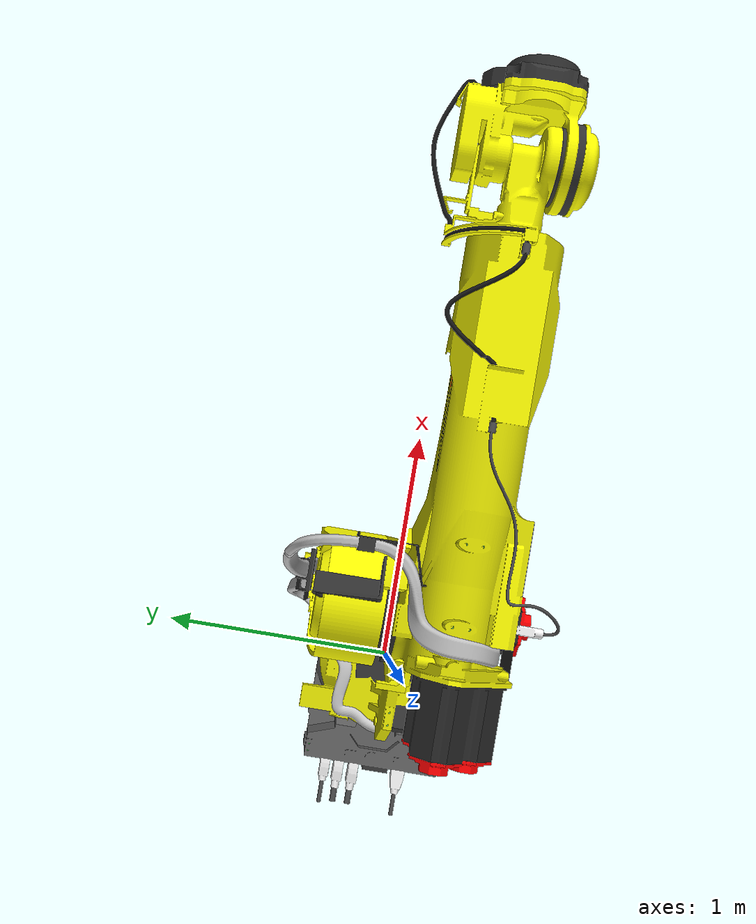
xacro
<?xml version="1.0" ?>
<robot name="m810_270_27b" xmlns:xacro="http://wiki.ros.org/xacro">
  <xacro:include
    filename="$(find fanuc_m810_description)/urdf/m810_270_27b_urdf_macro.xacro"
  />

  <link name="world" />
  <link name="ee_link" />
  <xacro:m810_270_27b parent="world" child="ee_link">
    <origin xyz="0 0 0" rpy="0 0 0" />
  </xacro:m810_270_27b>
</robot>

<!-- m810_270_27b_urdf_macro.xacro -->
<!--
SPDX-FileCopyrightText: 2026, FANUC America Corporation
SPDX-FileCopyrightText: 2026, FANUC CORPORATION
SPDX-License-Identifier: Apache-2.0
-->
<!-- URDF for M-810/270-27B -->
<robot xmlns:xacro="http://wiki.ros.org/xacro">
  <xacro:macro
    name="m810_270_27b"
    params="prefix=''
            parent
            *origin
            child"
  >

    <xacro:property name="j1_lower_limit" value="${radians(-165)}" />
    <xacro:property name="j2_lower_limit" value="${radians(-75)}" />
    <xacro:property name="j3_lower_limit" value="${radians(-79)}" />
    <xacro:property name="j4_lower_limit" value="${radians(-153)}" />
    <xacro:property name="j5_lower_limit" value="${radians(-120)}" />
    <xacro:property name="j6_lower_limit" value="${radians(-360)}" />

    <xacro:property name="j1_upper_limit" value="${radians(165)}" />
    <xacro:property name="j2_upper_limit" value="${radians(96)}" />
    <xacro:property name="j3_upper_limit" value="${radians(90)}" />
    <xacro:property name="j4_upper_limit" value="${radians(153)}" />
    <xacro:property name="j5_upper_limit" value="${radians(120)}" />
    <xacro:property name="j6_upper_limit" value="${radians(360)}" />

    <xacro:property name="j1_effort_limit" value="30000" />
    <xacro:property name="j2_effort_limit" value="30000" />
    <xacro:property name="j3_effort_limit" value="30000" />
    <xacro:property name="j4_effort_limit" value="6000" />
    <xacro:property name="j5_effort_limit" value="6000" />
    <xacro:property name="j6_effort_limit" value="3000" />

    <xacro:property name="j1_velocity_limit" value="${radians(100)}" />
    <xacro:property name="j2_velocity_limit" value="${radians(80)}" />
    <xacro:property name="j3_velocity_limit" value="${radians(80)}" />
    <xacro:property name="j4_velocity_limit" value="${radians(120)}" />
    <xacro:property name="j5_velocity_limit" value="${radians(115)}" />
    <xacro:property name="j6_velocity_limit" value="${radians(200)}" />

    <!-- links -->
    <link name="${prefix}base_link">
      <visual>
        <origin xyz="0 0 0" rpy="0 0 0" />
        <geometry>
          <mesh
            filename="package://fanuc_m810_description/meshes/m810_270_27b/visual/base.dae"
          />
        </geometry>
      </visual>
      <collision>
        <origin xyz="0 0 0" rpy="0 0 0" />
        <geometry>
          <mesh
            filename="package://fanuc_m810_description/meshes/m810_270_27b/collision/base.stl"
          />
        </geometry>
      </collision>
      <inertial>
        <mass value=" 238" />
        <origin xyz="-.127 -.00127  .142" />
        <inertia
          ixx=" 8.11"
          ixy=" .156"
          ixz="-.283"
          iyy=" 16.3"
          iyz=" .0399"
          izz=" 20.7"
        />
      </inertial>
    </link>

    <link name="${prefix}J1_link">
      <visual>
        <origin xyz="0 0 0" rpy="0 0 0" />
        <geometry>
          <mesh
            filename="package://fanuc_m810_description/meshes/m810_270_27b/visual/j1.dae"
          />
        </geometry>
      </visual>
      <collision>
        <origin xyz="0 0 0" rpy="0 0 0" />
        <geometry>
          <mesh
            filename="package://fanuc_m810_description/meshes/m810_270_27b/collision/j1.stl"
          />
        </geometry>
      </collision>
      <inertial>
        <mass value=" 334" />
        <origin xyz=" .0992 -.00673 -.13" />
        <inertia
          ixx=" 16.9"
          ixy=" .385"
          ixz="-3.07"
          iyy=" 20.2"
          iyz=" .743"
          izz=" 21.7"
        />
      </inertial>
    </link>

    <link name="${prefix}J2_link">
      <visual>
        <origin xyz="0 0 0" rpy="0 0 0" />
        <geometry>
          <mesh
            filename="package://fanuc_m810_description/meshes/m810_270_27b/visual/j2.dae"
          />
        </geometry>
      </visual>
      <collision>
        <origin xyz="0 0 0" rpy="0 0 0" />
        <geometry>
          <mesh
            filename="package://fanuc_m810_description/meshes/m810_270_27b/collision/j2.stl"
          />
        </geometry>
      </collision>
      <inertial>
        <mass value=" 296" />
        <origin xyz=" .0101  .268  .476" />
        <inertia
          ixx=" 48.7"
          ixy=" .0564"
          ixz="-1.18"
          iyy=" 48.9"
          iyz="-2.3"
          izz=" 6.52"
        />
      </inertial>
    </link>

    <link name="${prefix}J3_link">
      <visual>
        <origin xyz="0 0 0" rpy="0 0 0" />
        <geometry>
          <mesh
            filename="package://fanuc_m810_description/meshes/m810_270_27b/visual/j3.dae"
          />
        </geometry>
      </visual>
      <collision>
        <origin xyz="0 0 0" rpy="0 0 0" />
        <geometry>
          <mesh
            filename="package://fanuc_m810_description/meshes/m810_270_27b/collision/j3.stl"
          />
        </geometry>
      </collision>
      <inertial>
        <mass value=" 473" />
        <origin xyz=" .255  .0575  .151" />
        <inertia
          ixx=" 20"
          ixy=" 1.27"
          ixz="-4.4"
          iyy=" 62.8"
          iyz=" 1.17"
          izz=" 65.6"
        />
      </inertial>
    </link>

    <link name="${prefix}J4_link">
      <visual>
        <origin xyz="0 0 0" rpy="0 0 0" />
        <geometry>
          <mesh
            filename="package://fanuc_m810_description/meshes/m810_270_27b/visual/j4.dae"
          />
        </geometry>
      </visual>
      <collision>
        <origin xyz="0 0 0" rpy="0 0 0" />
        <geometry>
          <mesh
            filename="package://fanuc_m810_description/meshes/m810_270_27b/collision/j4.stl"
          />
        </geometry>
      </collision>
      <inertial>
        <mass value=" 48.2" />
        <origin xyz=" 1.08  .0482  .0456" />
        <inertia
          ixx=" .566"
          ixy=" .0479"
          ixz=" .232"
          iyy=" 1.19"
          iyz="-.0335"
          izz=" 1.23"
        />
      </inertial>
    </link>

    <link name="${prefix}J5_link">
      <visual>
        <origin xyz="0 0 0" rpy="0 0 0" />
        <geometry>
          <mesh
            filename="package://fanuc_m810_description/meshes/m810_270_27b/visual/j5.dae"
          />
        </geometry>
      </visual>
      <collision>
        <origin xyz="0 0 0" rpy="0 0 0" />
        <geometry>
          <mesh
            filename="package://fanuc_m810_description/meshes/m810_270_27b/collision/j5.stl"
          />
        </geometry>
      </collision>
      <inertial>
        <mass value=" 38.2" />
        <origin xyz=" .0656  .0126  .0000000911" />
        <inertia
          ixx=" .55"
          ixy="-.0402"
          ixz="-.000000554"
          iyy=" .434"
          iyz=" .00000095"
          izz=" .711"
        />
      </inertial>
    </link>

    <link name="${prefix}J6_link">
      <visual>
        <origin xyz="0 0 0" rpy="0 0 0" />
        <geometry>
          <mesh
            filename="package://fanuc_m810_description/meshes/m810_270_27b/visual/j6.dae"
          />
        </geometry>
      </visual>
      <collision>
        <origin xyz="0 0 0" rpy="0 0 0" />
        <geometry>
          <mesh
            filename="package://fanuc_m810_description/meshes/m810_270_27b/collision/j6.stl"
          />
        </geometry>
      </collision>
      <inertial>
        <mass value=" 2.81" />
        <origin xyz=" .231 -.00000142 -.00000316" />
        <inertia
          ixx=" .0164"
          ixy=" .0000000217"
          ixz="-.00000000848"
          iyy=" .00875"
          iyz=" .0000000000127"
          izz=" .00875"
        />
      </inertial>
    </link>

    <!-- joints -->
    <joint name="${prefix}J1" type="revolute">
      <origin xyz=" 0  0  .67" rpy="0 0 0" />
      <parent link="${prefix}base_link" />
      <child link="${prefix}J1_link" />
      <axis xyz=" 0  0  1" />
      <limit
        lower="${j1_lower_limit}"
        upper="${j1_upper_limit}"
        effort="${j1_effort_limit}"
        velocity="${j1_velocity_limit}"
      />
    </joint>

    <joint name="${prefix}J2" type="revolute">
      <origin xyz=" .312  0  0" rpy="0 0 0" />
      <parent link="${prefix}J1_link" />
      <child link="${prefix}J2_link" />
      <axis xyz=" 0  1  0" />
      <limit
        lower="${j2_lower_limit}"
        upper="${j2_upper_limit}"
        effort="${j2_effort_limit}"
        velocity="${j2_velocity_limit}"
      />
    </joint>

    <joint name="${prefix}J3" type="revolute">
      <origin xyz=" 0  0  1.075" rpy="0 0 0" />
      <parent link="${prefix}J2_link" />
      <child link="${prefix}J3_link" />
      <axis xyz=" 0 -1  0" />
      <limit
        lower="${j3_lower_limit}"
        upper="${j3_upper_limit}"
        effort="${j3_effort_limit}"
        velocity="${j3_velocity_limit}"
      />
    </joint>

    <joint name="${prefix}J4" type="revolute">
      <origin xyz=" 0  0  .225" rpy="0 0 0" />
      <parent link="${prefix}J3_link" />
      <child link="${prefix}J4_link" />
      <axis xyz="-1  0  0" />
      <limit
        lower="${j4_lower_limit}"
        upper="${j4_upper_limit}"
        effort="${j4_effort_limit}"
        velocity="${j4_velocity_limit}"
      />
    </joint>

    <joint name="${prefix}J5" type="revolute">
      <origin xyz=" 1.28  0  0" rpy="0 0 0" />
      <parent link="${prefix}J4_link" />
      <child link="${prefix}J5_link" />
      <axis xyz=" 0 -1  0" />
      <limit
        lower="${j5_lower_limit}"
        upper="${j5_upper_limit}"
        effort="${j5_effort_limit}"
        velocity="${j5_velocity_limit}"
      />
    </joint>

    <joint name="${prefix}J6" type="revolute">
      <origin xyz=" 0  0  0" rpy="0 0 0" />
      <parent link="${prefix}J5_link" />
      <child link="${prefix}J6_link" />
      <axis xyz="-1  0  0" />
      <limit
        lower="${j6_lower_limit}"
        upper="${j6_upper_limit}"
        effort="${j6_effort_limit}"
        velocity="${j6_velocity_limit}"
      />
    </joint>

    <!-- world coords -->
    <link name="${prefix}wbase" />
    <joint name="${prefix}base_link-wbase" type="fixed">
      <origin xyz=" 0  0  .67" rpy="0 0 0" />
      <parent link="${prefix}base_link" />
      <child link="${prefix}wbase" />
    </joint>

    <!-- flange coords -->
    <link name="${prefix}flange" />
    <joint name="${prefix}J6-flange" type="fixed">
      <origin xyz=" .24  0  0" rpy="0 0 0" />
      <parent link="${prefix}J6_link" />
      <child link="${prefix}flange" />
    </joint>

    <!-- FANUC flange coords -->
    <link name="${prefix}fanuc_flange" />
    <joint name="${prefix}flange-fanuc_flange" type="fixed">
      <origin xyz="0 0 0" rpy="${radians( 180)} ${radians(-90)} ${radians( 0)}" />
      <parent link="${prefix}flange" />
      <child link="${prefix}fanuc_flange" />
    </joint>

    <!-- Attach to parent -->
    <joint name="${prefix}base_joint" type="fixed">
      <xacro:insert_block name="origin" />
      <parent link="${parent}" />
      <child link="${prefix}base_link" />
    </joint>

    <!-- Attach child -->
    <joint name="${prefix}child_joint" type="fixed">
      <origin xyz="0 0 0" rpy="0 0 0" />
      <parent link="${prefix}flange" />
      <child link="${child}" />
    </joint>
  </xacro:macro>
</robot>
